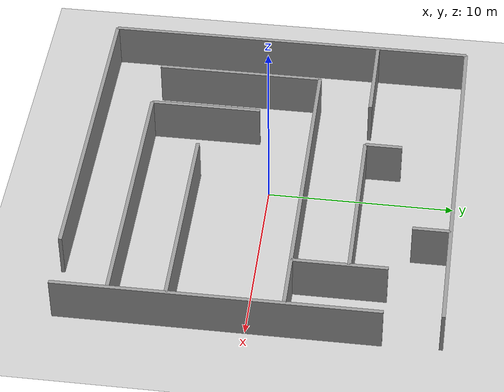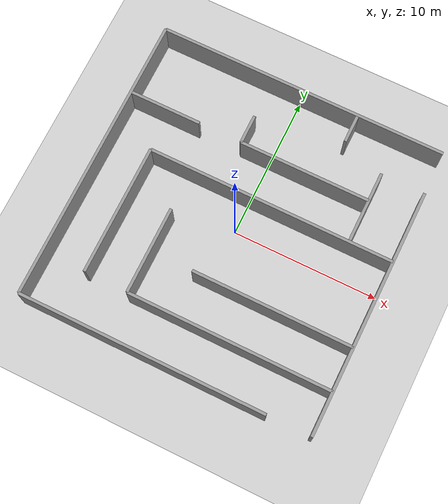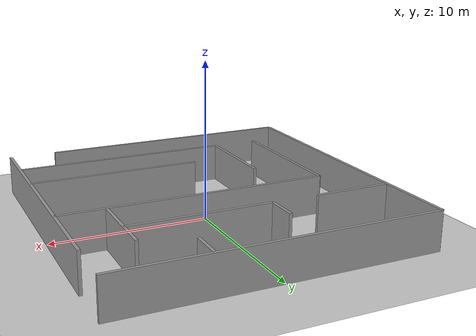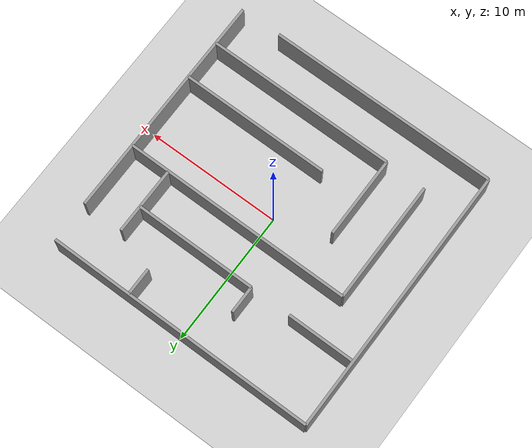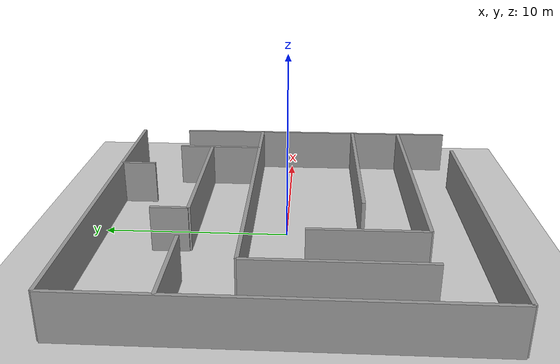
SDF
<sdf version="1.6">
 <world name="maze">
  <physics name="default_physics" default="0" type="ode">
   <ode>
    <solver>
     <type>quick</type>
     <iters>50</iters>
     <sor>1.4</sor>
     <use_dynamic_moi_rescaling>0</use_dynamic_moi_rescaling>
    </solver>
    <constraints>
     <cfm>0</cfm>
     <erp>0.2</erp>
     <contact_max_correcting_vel>100</contact_max_correcting_vel>
     <contact_surface_layer>0</contact_surface_layer>
    </constraints>
   </ode>
   <real_time_update_rate>1000</real_time_update_rate>
   <max_step_size>0.001</max_step_size>
   <real_time_factor>1</real_time_factor>
  </physics>
  <scene><ambient>0.3 0.3 0.3 1</ambient><background>0.7 0.7 0.7 1</background><shadows>1</shadows></scene>
  <light name="sun" type="directional">
   <pose>0 0 100 0 -0 0</pose>
   <diffuse>0.9 0.9 0.9 1</diffuse>
   <specular>0.1 0.1 0.1 1</specular>
   <attenuation>
    <range>1000</range>
    <constant>0.9</constant>
    <linear>0.01</linear>
    <quadratic>0.001</quadratic>
   </attenuation>
   <direction>-0.2 0 -1</direction>
  </light>
  <light name="light_bulb" type="point">
   <cast_shadows>0</cast_shadows>
   <pose>0 0 10 0 -0 0</pose>
   <diffuse>0.5 0.5 0.5 1</diffuse>
   <specular>0 0 0 1</specular>
   <attenuation>
    <range>80</range>
    <constant>0.9</constant>
    <linear>0.01</linear>
    <quadratic>0.001</quadratic>
   </attenuation>
   <direction>0 0 -1</direction>
  </light>
  <model name="ground_plane">
   <static>1</static>
   <link name="link">
    <collision name="collision">
     <geometry><plane><normal>0 0 1</normal><size>100 100</size></plane></geometry>
     <surface><friction><ode><mu>100</mu><mu2>50</mu2></ode></friction></surface>
    </collision>
    <visual name="visual">
     <cast_shadows>0</cast_shadows>
     <geometry><plane><normal>0 0 1</normal><size>100 100</size></plane></geometry>
     <material>
      <script><uri>file://media/materials/scripts/gazebo.material</uri><name>Gazebo/Grey</name></script>
     </material>
    </visual>
   </link>
  </model>
  <gravity>0 0 -9.81</gravity>
  <magnetic_field>6e-06 2.3e-05 -4.2e-05</magnetic_field>
  <atmosphere type="adiabatic"/>
  <spherical_coordinates>
   <surface_model>EARTH_WGS84</surface_model>
   <latitude_deg>0</latitude_deg>
   <longitude_deg>0</longitude_deg>
   <elevation>0</elevation>
   <heading_deg>0</heading_deg>
  </spherical_coordinates>
  <model name="challenge_maze">
   <link name="Wall_0">
    <pose>-10 -10 0 0 -0 1.5708</pose>
    <visual name="Wall_0_Visual">
     <pose>10 0 1.25 0 -0 0</pose>
     <geometry><box><size>20 0.2 2.5</size></box></geometry>
     <material>
      <script><uri>file://media/materials/scripts/gazebo.material</uri><name>Gazebo/Grey</name></script>
      <shader type="pixel"/>
      <ambient>0.3 0.3 0.3 1</ambient>
      <diffuse>0.7 0.7 0.7 1</diffuse>
      <specular>0.01 0.01 0.01 1</specular>
      <emissive>0 0 0 1</emissive>
     </material>
    </visual>
    <collision name="Wall_0_Collision">
     <pose>10 0 1.25 0 -0 0</pose>
     <geometry><box><size>20 0.2 2.5</size></box></geometry>
     <surface>
      <friction>
       <ode><mu>1</mu><mu2>1</mu2><fdir1>0 0 0</fdir1><slip1>0</slip1><slip2>0</slip2></ode>
       <torsional>
        <coefficient>1</coefficient>
        <patch_radius>0</patch_radius>
        <surface_radius>0</surface_radius>
        <use_patch_radius>1</use_patch_radius>
        <ode><slip>0</slip></ode>
       </torsional>
      </friction>
      <bounce><restitution_coefficient>0</restitution_coefficient><threshold>1e+06</threshold></bounce>
      <contact>
       <collide_without_contact>0</collide_without_contact>
       <collide_without_contact_bitmask>1</collide_without_contact_bitmask>
       <collide_bitmask>1</collide_bitmask>
       <ode>
        <soft_cfm>0</soft_cfm>
        <soft_erp>0.2</soft_erp>
        <kp>1e+13</kp>
        <kd>1</kd>
        <max_vel>0.01</max_vel>
        <min_depth>0</min_depth>
       </ode>
       <bullet>
        <split_impulse>1</split_impulse>
        <split_impulse_penetration_threshold>-0.01</split_impulse_penetration_threshold>
        <soft_cfm>0</soft_cfm>
        <soft_erp>0.2</soft_erp>
        <kp>1e+13</kp>
        <kd>1</kd>
       </bullet>
      </contact>
     </surface>
    </collision>
   </link>
   <link name="Wall_1">
    <pose>-10 -10 0 0 -0 0</pose>
    <inertial>
     <mass>1</mass>
     <inertia><ixx>1</ixx><ixy>0</ixy><ixz>0</ixz><iyy>1</iyy><iyz>0</iyz><izz>1</izz></inertia>
    </inertial>
    <visual name="Wall_1_Visual">
     <pose>8.5 0 1.25 0 -0 0</pose>
     <geometry><box><size>17 0.2 2.5</size></box></geometry>
     <material>
      <script><uri>file://media/materials/scripts/gazebo.material</uri><name>Gazebo/Grey</name></script>
      <shader type="pixel"><normal_map>__default__</normal_map></shader>
      <ambient>0.3 0.3 0.3 1</ambient>
      <diffuse>0.7 0.7 0.7 1</diffuse>
      <specular>0.01 0.01 0.01 1</specular>
      <emissive>0 0 0 1</emissive>
     </material>
    </visual>
    <collision name="Wall_1_Collision">
     <pose>8.5 0 1.25 0 -0 0</pose>
     <geometry><box><size>17 0.2 2.5</size></box></geometry>
     <surface>
      <friction>
       <ode><mu>1</mu><mu2>1</mu2><fdir1>0 0 0</fdir1><slip1>0</slip1><slip2>0</slip2></ode>
       <torsional>
        <coefficient>1</coefficient>
        <patch_radius>0</patch_radius>
        <surface_radius>0</surface_radius>
        <use_patch_radius>1</use_patch_radius>
        <ode><slip>0</slip></ode>
       </torsional>
      </friction>
      <bounce><restitution_coefficient>0</restitution_coefficient><threshold>1e+06</threshold></bounce>
      <contact>
       <collide_without_contact>0</collide_without_contact>
       <collide_without_contact_bitmask>1</collide_without_contact_bitmask>
       <collide_bitmask>1</collide_bitmask>
       <ode>
        <soft_cfm>0</soft_cfm>
        <soft_erp>0.2</soft_erp>
        <kp>1e+13</kp>
        <kd>1</kd>
        <max_vel>0.01</max_vel>
        <min_depth>0</min_depth>
       </ode>
       <bullet>
        <split_impulse>1</split_impulse>
        <split_impulse_penetration_threshold>-0.01</split_impulse_penetration_threshold>
        <soft_cfm>0</soft_cfm>
        <soft_erp>0.2</soft_erp>
        <kp>1e+13</kp>
        <kd>1</kd>
       </bullet>
      </contact>
     </surface>
    </collision>
   </link>
   <link name="Wall_10">
    <pose>-2 5 0 0 -0 1.5708</pose>
    <visual name="Wall_10_Visual">
     <pose>1 0 1.25 0 -0 0</pose>
     <geometry><box><size>2 0.2 2.5</size></box></geometry>
     <material>
      <script><uri>file://media/materials/scripts/gazebo.material</uri><name>Gazebo/Grey</name></script>
      <shader type="pixel"/>
      <ambient>0.3 0.3 0.3 1</ambient>
      <diffuse>0.7 0.7 0.7 1</diffuse>
      <specular>0.01 0.01 0.01 1</specular>
      <emissive>0 0 0 1</emissive>
     </material>
    </visual>
    <collision name="Wall_10_Collision">
     <pose>1 0 1.25 0 -0 0</pose>
     <geometry><box><size>2 0.2 2.5</size></box></geometry>
     <surface>
      <friction>
       <ode><mu>1</mu><mu2>1</mu2><fdir1>0 0 0</fdir1><slip1>0</slip1><slip2>0</slip2></ode>
       <torsional>
        <coefficient>1</coefficient>
        <patch_radius>0</patch_radius>
        <surface_radius>0</surface_radius>
        <use_patch_radius>1</use_patch_radius>
        <ode><slip>0</slip></ode>
       </torsional>
      </friction>
      <bounce><restitution_coefficient>0</restitution_coefficient><threshold>1e+06</threshold></bounce>
      <contact>
       <collide_without_contact>0</collide_without_contact>
       <collide_without_contact_bitmask>1</collide_without_contact_bitmask>
       <collide_bitmask>1</collide_bitmask>
       <ode>
        <soft_cfm>0</soft_cfm>
        <soft_erp>0.2</soft_erp>
        <kp>1e+13</kp>
        <kd>1</kd>
        <max_vel>0.01</max_vel>
        <min_depth>0</min_depth>
       </ode>
       <bullet>
        <split_impulse>1</split_impulse>
        <split_impulse_penetration_threshold>-0.01</split_impulse_penetration_threshold>
        <soft_cfm>0</soft_cfm>
        <soft_erp>0.2</soft_erp>
        <kp>1e+13</kp>
        <kd>1</kd>
       </bullet>
      </contact>
     </surface>
    </collision>
   </link>
   <link name="Wall_11">
    <pose>4 8 0 0 -0 1.5708</pose>
    <visual name="Wall_11_Visual">
     <pose>1 0 1.25 0 -0 0</pose>
     <geometry><box><size>2 0.2 2.5</size></box></geometry>
     <material>
      <script><uri>file://media/materials/scripts/gazebo.material</uri><name>Gazebo/Grey</name></script>
      <shader type="pixel"/>
      <ambient>0.3 0.3 0.3 1</ambient>
      <diffuse>0.7 0.7 0.7 1</diffuse>
      <specular>0.01 0.01 0.01 1</specular>
      <emissive>0 0 0 1</emissive>
     </material>
    </visual>
    <collision name="Wall_11_Collision">
     <pose>1 0 1.25 0 -0 0</pose>
     <geometry><box><size>2 0.2 2.5</size></box></geometry>
     <surface>
      <friction>
       <ode><mu>1</mu><mu2>1</mu2><fdir1>0 0 0</fdir1><slip1>0</slip1><slip2>0</slip2></ode>
       <torsional>
        <coefficient>1</coefficient>
        <patch_radius>0</patch_radius>
        <surface_radius>0</surface_radius>
        <use_patch_radius>1</use_patch_radius>
        <ode><slip>0</slip></ode>
       </torsional>
      </friction>
      <bounce><restitution_coefficient>0</restitution_coefficient><threshold>1e+06</threshold></bounce>
      <contact>
       <collide_without_contact>0</collide_without_contact>
       <collide_without_contact_bitmask>1</collide_without_contact_bitmask>
       <collide_bitmask>1</collide_bitmask>
       <ode>
        <soft_cfm>0</soft_cfm>
        <soft_erp>0.2</soft_erp>
        <kp>1e+13</kp>
        <kd>1</kd>
        <max_vel>0.01</max_vel>
        <min_depth>0</min_depth>
       </ode>
       <bullet>
        <split_impulse>1</split_impulse>
        <split_impulse_penetration_threshold>-0.01</split_impulse_penetration_threshold>
        <soft_cfm>0</soft_cfm>
        <soft_erp>0.2</soft_erp>
        <kp>1e+13</kp>
        <kd>1</kd>
       </bullet>
      </contact>
     </surface>
    </collision>
   </link>
   <link name="Wall_12">
    <pose>7 2 0 0 -0 1.5708</pose>
    <visual name="Wall_12_Visual">
     <pose>2.5 0 1.25 0 -0 0</pose>
     <geometry><box><size>5 0.2 2.5</size></box></geometry>
     <material>
      <script><uri>file://media/materials/scripts/gazebo.material</uri><name>Gazebo/Grey</name></script>
      <shader type="pixel"/>
      <ambient>0.3 0.3 0.3 1</ambient>
      <diffuse>0.7 0.7 0.7 1</diffuse>
      <specular>0.01 0.01 0.01 1</specular>
      <emissive>0 0 0 1</emissive>
     </material>
    </visual>
    <collision name="Wall_12_Collision">
     <pose>2.5 0 1.25 0 -0 0</pose>
     <geometry><box><size>5 0.2 2.5</size></box></geometry>
     <surface>
      <friction>
       <ode><mu>1</mu><mu2>1</mu2><fdir1>0 0 0</fdir1><slip1>0</slip1><slip2>0</slip2></ode>
       <torsional>
        <coefficient>1</coefficient>
        <patch_radius>0</patch_radius>
        <surface_radius>0</surface_radius>
        <use_patch_radius>1</use_patch_radius>
        <ode><slip>0</slip></ode>
       </torsional>
      </friction>
      <bounce><restitution_coefficient>0</restitution_coefficient><threshold>1e+06</threshold></bounce>
      <contact>
       <collide_without_contact>0</collide_without_contact>
       <collide_without_contact_bitmask>1</collide_without_contact_bitmask>
       <collide_bitmask>1</collide_bitmask>
       <ode>
        <soft_cfm>0</soft_cfm>
        <soft_erp>0.2</soft_erp>
        <kp>1e+13</kp>
        <kd>1</kd>
        <max_vel>0.01</max_vel>
        <min_depth>0</min_depth>
       </ode>
       <bullet>
        <split_impulse>1</split_impulse>
        <split_impulse_penetration_threshold>-0.01</split_impulse_penetration_threshold>
        <soft_cfm>0</soft_cfm>
        <soft_erp>0.2</soft_erp>
        <kp>1e+13</kp>
        <kd>1</kd>
       </bullet>
      </contact>
     </surface>
    </collision>
   </link>
   <link name="Wall_13">
    <pose>-10 5 0 0 -0 0</pose>
    <visual name="Wall_13_Visual">
     <pose>2.5 0 1.25 0 -0 0</pose>
     <geometry><box><size>5 0.2 2.5</size></box></geometry>
     <material>
      <script><uri>file://media/materials/scripts/gazebo.material</uri><name>Gazebo/Grey</name></script>
      <shader type="pixel"/>
      <ambient>0.3 0.3 0.3 1</ambient>
      <diffuse>0.7 0.7 0.7 1</diffuse>
      <specular>0.01 0.01 0.01 1</specular>
      <emissive>0 0 0 1</emissive>
     </material>
    </visual>
    <collision name="Wall_13_Collision">
     <pose>2.5 0 1.25 0 -0 0</pose>
     <geometry><box><size>5 0.2 2.5</size></box></geometry>
     <surface>
      <friction>
       <ode><mu>1</mu><mu2>1</mu2><fdir1>0 0 0</fdir1><slip1>0</slip1><slip2>0</slip2></ode>
       <torsional>
        <coefficient>1</coefficient>
        <patch_radius>0</patch_radius>
        <surface_radius>0</surface_radius>
        <use_patch_radius>1</use_patch_radius>
        <ode><slip>0</slip></ode>
       </torsional>
      </friction>
      <bounce><restitution_coefficient>0</restitution_coefficient><threshold>1e+06</threshold></bounce>
      <contact>
       <collide_without_contact>0</collide_without_contact>
       <collide_without_contact_bitmask>1</collide_without_contact_bitmask>
       <collide_bitmask>1</collide_bitmask>
       <ode>
        <soft_cfm>0</soft_cfm>
        <soft_erp>0.2</soft_erp>
        <kp>1e+13</kp>
        <kd>1</kd>
        <max_vel>0.01</max_vel>
        <min_depth>0</min_depth>
       </ode>
       <bullet>
        <split_impulse>1</split_impulse>
        <split_impulse_penetration_threshold>-0.01</split_impulse_penetration_threshold>
        <soft_cfm>0</soft_cfm>
        <soft_erp>0.2</soft_erp>
        <kp>1e+13</kp>
        <kd>1</kd>
       </bullet>
      </contact>
     </surface>
    </collision>
   </link>
   <link name="Wall_2">
    <pose>10 -10 0 0 -0 1.5708</pose>
    <visual name="Wall_2_Visual">
     <pose>8.5 0 1.25 0 -0 0</pose>
     <geometry><box><size>17 0.2 2.5</size></box></geometry>
     <material>
      <script><uri>file://media/materials/scripts/gazebo.material</uri><name>Gazebo/Grey</name></script>
      <shader type="pixel"/>
      <ambient>0.3 0.3 0.3 1</ambient>
      <diffuse>0.7 0.7 0.7 1</diffuse>
      <specular>0.01 0.01 0.01 1</specular>
      <emissive>0 0 0 1</emissive>
     </material>
    </visual>
    <collision name="Wall_2_Collision">
     <pose>8.5 0 1.25 0 -0 0</pose>
     <geometry><box><size>17 0.2 2.5</size></box></geometry>
     <surface>
      <friction>
       <ode><mu>1</mu><mu2>1</mu2><fdir1>0 0 0</fdir1><slip1>0</slip1><slip2>0</slip2></ode>
       <torsional>
        <coefficient>1</coefficient>
        <patch_radius>0</patch_radius>
        <surface_radius>0</surface_radius>
        <use_patch_radius>1</use_patch_radius>
        <ode><slip>0</slip></ode>
       </torsional>
      </friction>
      <bounce><restitution_coefficient>0</restitution_coefficient><threshold>1e+06</threshold></bounce>
      <contact>
       <collide_without_contact>0</collide_without_contact>
       <collide_without_contact_bitmask>1</collide_without_contact_bitmask>
       <collide_bitmask>1</collide_bitmask>
       <ode>
        <soft_cfm>0</soft_cfm>
        <soft_erp>0.2</soft_erp>
        <kp>1e+13</kp>
        <kd>1</kd>
        <max_vel>0.01</max_vel>
        <min_depth>0</min_depth>
       </ode>
       <bullet>
        <split_impulse>1</split_impulse>
        <split_impulse_penetration_threshold>-0.01</split_impulse_penetration_threshold>
        <soft_cfm>0</soft_cfm>
        <soft_erp>0.2</soft_erp>
        <kp>1e+13</kp>
        <kd>1</kd>
       </bullet>
      </contact>
     </surface>
    </collision>
   </link>
   <link name="Wall_3">
    <pose>-10 10 0 0 -0 0</pose>
    <visual name="Wall_3_Visual">
     <pose>10 0 1.25 0 -0 0</pose>
     <geometry><box><size>20 0.2 2.5</size></box></geometry>
     <material>
      <script><uri>file://media/materials/scripts/gazebo.material</uri><name>Gazebo/Grey</name></script>
      <shader type="pixel"/>
      <ambient>0.3 0.3 0.3 1</ambient>
      <diffuse>0.7 0.7 0.7 1</diffuse>
      <specular>0.01 0.01 0.01 1</specular>
      <emissive>0 0 0 1</emissive>
     </material>
    </visual>
    <collision name="Wall_3_Collision">
     <pose>10 0 1.25 0 -0 0</pose>
     <geometry><box><size>20 0.2 2.5</size></box></geometry>
     <surface>
      <friction>
       <ode><mu>1</mu><mu2>1</mu2><fdir1>0 0 0</fdir1><slip1>0</slip1><slip2>0</slip2></ode>
       <torsional>
        <coefficient>1</coefficient>
        <patch_radius>0</patch_radius>
        <surface_radius>0</surface_radius>
        <use_patch_radius>1</use_patch_radius>
        <ode><slip>0</slip></ode>
       </torsional>
      </friction>
      <bounce><restitution_coefficient>0</restitution_coefficient><threshold>1e+06</threshold></bounce>
      <contact>
       <collide_without_contact>0</collide_without_contact>
       <collide_without_contact_bitmask>1</collide_without_contact_bitmask>
       <collide_bitmask>1</collide_bitmask>
       <ode>
        <soft_cfm>0</soft_cfm>
        <soft_erp>0.2</soft_erp>
        <kp>1e+13</kp>
        <kd>1</kd>
        <max_vel>0.01</max_vel>
        <min_depth>0</min_depth>
       </ode>
       <bullet>
        <split_impulse>1</split_impulse>
        <split_impulse_penetration_threshold>-0.01</split_impulse_penetration_threshold>
        <soft_cfm>0</soft_cfm>
        <soft_erp>0.2</soft_erp>
        <kp>1e+13</kp>
        <kd>1</kd>
       </bullet>
      </contact>
     </surface>
    </collision>
   </link>
   <link name="Wall_4">
    <pose>-4 -7 0 0 -0 0</pose>
    <visual name="Wall_4_Visual">
     <pose>7 0 1.25 0 -0 0</pose>
     <geometry><box><size>14 0.2 2.5</size></box></geometry>
     <material>
      <script><uri>file://media/materials/scripts/gazebo.material</uri><name>Gazebo/Grey</name></script>
      <shader type="pixel"/>
      <ambient>0.3 0.3 0.3 1</ambient>
      <diffuse>0.7 0.7 0.7 1</diffuse>
      <specular>0.01 0.01 0.01 1</specular>
      <emissive>0 0 0 1</emissive>
     </material>
    </visual>
    <collision name="Wall_4_Collision">
     <pose>7 0 1.25 0 -0 0</pose>
     <geometry><box><size>14 0.2 2.5</size></box></geometry>
     <surface>
      <friction>
       <ode><mu>1</mu><mu2>1</mu2><fdir1>0 0 0</fdir1><slip1>0</slip1><slip2>0</slip2></ode>
       <torsional>
        <coefficient>1</coefficient>
        <patch_radius>0</patch_radius>
        <surface_radius>0</surface_radius>
        <use_patch_radius>1</use_patch_radius>
        <ode><slip>0</slip></ode>
       </torsional>
      </friction>
      <bounce><restitution_coefficient>0</restitution_coefficient><threshold>1e+06</threshold></bounce>
      <contact>
       <collide_without_contact>0</collide_without_contact>
       <collide_without_contact_bitmask>1</collide_without_contact_bitmask>
       <collide_bitmask>1</collide_bitmask>
       <ode>
        <soft_cfm>0</soft_cfm>
        <soft_erp>0.2</soft_erp>
        <kp>1e+13</kp>
        <kd>1</kd>
        <max_vel>0.01</max_vel>
        <min_depth>0</min_depth>
       </ode>
       <bullet>
        <split_impulse>1</split_impulse>
        <split_impulse_penetration_threshold>-0.01</split_impulse_penetration_threshold>
        <soft_cfm>0</soft_cfm>
        <soft_erp>0.2</soft_erp>
        <kp>1e+13</kp>
        <kd>1</kd>
       </bullet>
      </contact>
     </surface>
    </collision>
   </link>
   <link name="Wall_5">
    <pose>-7 -7 0 0 -0 1.5708</pose>
    <visual name="Wall_5_Visual">
     <pose>4.5 0 1.25 0 -0 0</pose>
     <geometry><box><size>9 0.2 2.5</size></box></geometry>
     <material>
      <script><uri>file://media/materials/scripts/gazebo.material</uri><name>Gazebo/Grey</name></script>
      <shader type="pixel"/>
      <ambient>0.3 0.3 0.3 1</ambient>
      <diffuse>0.7 0.7 0.7 1</diffuse>
      <specular>0.01 0.01 0.01 1</specular>
      <emissive>0 0 0 1</emissive>
     </material>
    </visual>
    <collision name="Wall_5_Collision">
     <pose>4.5 0 1.25 0 -0 0</pose>
     <geometry><box><size>9 0.2 2.5</size></box></geometry>
     <surface>
      <friction>
       <ode><mu>1</mu><mu2>1</mu2><fdir1>0 0 0</fdir1><slip1>0</slip1><slip2>0</slip2></ode>
       <torsional>
        <coefficient>1</coefficient>
        <patch_radius>0</patch_radius>
        <surface_radius>0</surface_radius>
        <use_patch_radius>1</use_patch_radius>
        <ode><slip>0</slip></ode>
       </torsional>
      </friction>
      <bounce><restitution_coefficient>0</restitution_coefficient><threshold>1e+06</threshold></bounce>
      <contact>
       <collide_without_contact>0</collide_without_contact>
       <collide_without_contact_bitmask>1</collide_without_contact_bitmask>
       <collide_bitmask>1</collide_bitmask>
       <ode>
        <soft_cfm>0</soft_cfm>
        <soft_erp>0.2</soft_erp>
        <kp>1e+13</kp>
        <kd>1</kd>
        <max_vel>0.01</max_vel>
        <min_depth>0</min_depth>
       </ode>
       <bullet>
        <split_impulse>1</split_impulse>
        <split_impulse_penetration_threshold>-0.01</split_impulse_penetration_threshold>
        <soft_cfm>0</soft_cfm>
        <soft_erp>0.2</soft_erp>
        <kp>1e+13</kp>
        <kd>1</kd>
       </bullet>
      </contact>
     </surface>
    </collision>
   </link>
   <link name="Wall_6">
    <pose>-1 -4 0 0 -0 0</pose>
    <visual name="Wall_6_Visual">
     <pose>5.5 0 1.25 0 -0 0</pose>
     <geometry><box><size>11 0.2 2.5</size></box></geometry>
     <material>
      <script><uri>file://media/materials/scripts/gazebo.material</uri><name>Gazebo/Grey</name></script>
      <shader type="pixel"/>
      <ambient>0.3 0.3 0.3 1</ambient>
      <diffuse>0.7 0.7 0.7 1</diffuse>
      <specular>0.01 0.01 0.01 1</specular>
      <emissive>0 0 0 1</emissive>
     </material>
    </visual>
    <collision name="Wall_6_Collision">
     <pose>5.5 0 1.25 0 -0 0</pose>
     <geometry><box><size>11 0.2 2.5</size></box></geometry>
     <surface>
      <friction>
       <ode><mu>1</mu><mu2>1</mu2><fdir1>0 0 0</fdir1><slip1>0</slip1><slip2>0</slip2></ode>
       <torsional>
        <coefficient>1</coefficient>
        <patch_radius>0</patch_radius>
        <surface_radius>0</surface_radius>
        <use_patch_radius>1</use_patch_radius>
        <ode><slip>0</slip></ode>
       </torsional>
      </friction>
      <bounce><restitution_coefficient>0</restitution_coefficient><threshold>1e+06</threshold></bounce>
      <contact>
       <collide_without_contact>0</collide_without_contact>
       <collide_without_contact_bitmask>1</collide_without_contact_bitmask>
       <collide_bitmask>1</collide_bitmask>
       <ode>
        <soft_cfm>0</soft_cfm>
        <soft_erp>0.2</soft_erp>
        <kp>1e+13</kp>
        <kd>1</kd>
        <max_vel>0.01</max_vel>
        <min_depth>0</min_depth>
       </ode>
       <bullet>
        <split_impulse>1</split_impulse>
        <split_impulse_penetration_threshold>-0.01</split_impulse_penetration_threshold>
        <soft_cfm>0</soft_cfm>
        <soft_erp>0.2</soft_erp>
        <kp>1e+13</kp>
        <kd>1</kd>
       </bullet>
      </contact>
     </surface>
    </collision>
   </link>
   <link name="Wall_7">
    <pose>-4 -7 0 0 -0 1.5708</pose>
    <visual name="Wall_7_Visual">
     <pose>3 0 1.25 0 -0 0</pose>
     <geometry><box><size>6 0.2 2.5</size></box></geometry>
     <material>
      <script><uri>file://media/materials/scripts/gazebo.material</uri><name>Gazebo/Grey</name></script>
      <shader type="pixel"/>
      <ambient>0.3 0.3 0.3 1</ambient>
      <diffuse>0.7 0.7 0.7 1</diffuse>
      <specular>0.01 0.01 0.01 1</specular>
      <emissive>0 0 0 1</emissive>
     </material>
    </visual>
    <collision name="Wall_7_Collision">
     <pose>3 0 1.25 0 -0 0</pose>
     <geometry><box><size>6 0.2 2.5</size></box></geometry>
     <surface>
      <friction>
       <ode><mu>1</mu><mu2>1</mu2><fdir1>0 0 0</fdir1><slip1>0</slip1><slip2>0</slip2></ode>
       <torsional>
        <coefficient>1</coefficient>
        <patch_radius>0</patch_radius>
        <surface_radius>0</surface_radius>
        <use_patch_radius>1</use_patch_radius>
        <ode><slip>0</slip></ode>
       </torsional>
      </friction>
      <bounce><restitution_coefficient>0</restitution_coefficient><threshold>1e+06</threshold></bounce>
      <contact>
       <collide_without_contact>0</collide_without_contact>
       <collide_without_contact_bitmask>1</collide_without_contact_bitmask>
       <collide_bitmask>1</collide_bitmask>
       <ode>
        <soft_cfm>0</soft_cfm>
        <soft_erp>0.2</soft_erp>
        <kp>1e+13</kp>
        <kd>1</kd>
        <max_vel>0.01</max_vel>
        <min_depth>0</min_depth>
       </ode>
       <bullet>
        <split_impulse>1</split_impulse>
        <split_impulse_penetration_threshold>-0.01</split_impulse_penetration_threshold>
        <soft_cfm>0</soft_cfm>
        <soft_erp>0.2</soft_erp>
        <kp>1e+13</kp>
        <kd>1</kd>
       </bullet>
      </contact>
     </surface>
    </collision>
   </link>
   <link name="Wall_8">
    <pose>-7 2 0 0 -0 0</pose>
    <visual name="Wall_8_Visual">
     <pose>8.5 0 1.25 0 -0 0</pose>
     <geometry><box><size>17 0.2 2.5</size></box></geometry>
     <material>
      <script><uri>file://media/materials/scripts/gazebo.material</uri><name>Gazebo/Grey</name></script>
      <shader type="pixel"/>
      <ambient>0.3 0.3 0.3 1</ambient>
      <diffuse>0.7 0.7 0.7 1</diffuse>
      <specular>0.01 0.01 0.01 1</specular>
      <emissive>0 0 0 1</emissive>
     </material>
    </visual>
    <collision name="Wall_8_Collision">
     <pose>8.5 0 1.25 0 -0 0</pose>
     <geometry><box><size>17 0.2 2.5</size></box></geometry>
     <surface>
      <friction>
       <ode><mu>1</mu><mu2>1</mu2><fdir1>0 0 0</fdir1><slip1>0</slip1><slip2>0</slip2></ode>
       <torsional>
        <coefficient>1</coefficient>
        <patch_radius>0</patch_radius>
        <surface_radius>0</surface_radius>
        <use_patch_radius>1</use_patch_radius>
        <ode><slip>0</slip></ode>
       </torsional>
      </friction>
      <bounce><restitution_coefficient>0</restitution_coefficient><threshold>1e+06</threshold></bounce>
      <contact>
       <collide_without_contact>0</collide_without_contact>
       <collide_without_contact_bitmask>1</collide_without_contact_bitmask>
       <collide_bitmask>1</collide_bitmask>
       <ode>
        <soft_cfm>0</soft_cfm>
        <soft_erp>0.2</soft_erp>
        <kp>1e+13</kp>
        <kd>1</kd>
        <max_vel>0.01</max_vel>
        <min_depth>0</min_depth>
       </ode>
       <bullet>
        <split_impulse>1</split_impulse>
        <split_impulse_penetration_threshold>-0.01</split_impulse_penetration_threshold>
        <soft_cfm>0</soft_cfm>
        <soft_erp>0.2</soft_erp>
        <kp>1e+13</kp>
        <kd>1</kd>
       </bullet>
      </contact>
     </surface>
    </collision>
   </link>
   <link name="Wall_9">
    <pose>-2 5 0 0 -0 0</pose>
    <visual name="Wall_9_Visual">
     <pose>4.5 0 1.25 0 -0 0</pose>
     <geometry><box><size>9 0.2 2.5</size></box></geometry>
     <material>
      <script><uri>file://media/materials/scripts/gazebo.material</uri><name>Gazebo/Grey</name></script>
      <shader type="pixel"/>
      <ambient>0.3 0.3 0.3 1</ambient>
      <diffuse>0.7 0.7 0.7 1</diffuse>
      <specular>0.01 0.01 0.01 1</specular>
      <emissive>0 0 0 1</emissive>
     </material>
    </visual>
    <collision name="Wall_9_Collision">
     <pose>4.5 0 1.25 0 -0 0</pose>
     <geometry><box><size>9 0.2 2.5</size></box></geometry>
     <surface>
      <friction>
       <ode><mu>1</mu><mu2>1</mu2><fdir1>0 0 0</fdir1><slip1>0</slip1><slip2>0</slip2></ode>
       <torsional>
        <coefficient>1</coefficient>
        <patch_radius>0</patch_radius>
        <surface_radius>0</surface_radius>
        <use_patch_radius>1</use_patch_radius>
        <ode><slip>0</slip></ode>
       </torsional>
      </friction>
      <bounce><restitution_coefficient>0</restitution_coefficient><threshold>1e+06</threshold></bounce>
      <contact>
       <collide_without_contact>0</collide_without_contact>
       <collide_without_contact_bitmask>1</collide_without_contact_bitmask>
       <collide_bitmask>1</collide_bitmask>
       <ode>
        <soft_cfm>0</soft_cfm>
        <soft_erp>0.2</soft_erp>
        <kp>1e+13</kp>
        <kd>1</kd>
        <max_vel>0.01</max_vel>
        <min_depth>0</min_depth>
       </ode>
       <bullet>
        <split_impulse>1</split_impulse>
        <split_impulse_penetration_threshold>-0.01</split_impulse_penetration_threshold>
        <soft_cfm>0</soft_cfm>
        <soft_erp>0.2</soft_erp>
        <kp>1e+13</kp>
        <kd>1</kd>
       </bullet>
      </contact>
     </surface>
    </collision>
   </link>
   <static>1</static>
  </model>
 </world>
</sdf>
